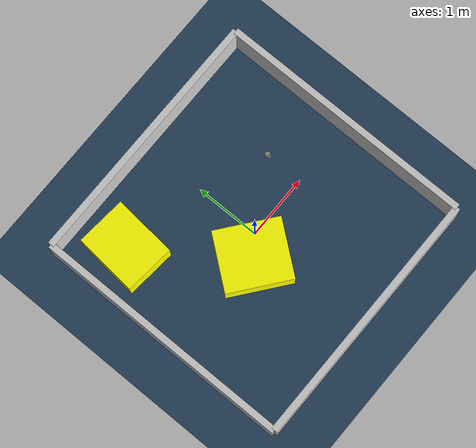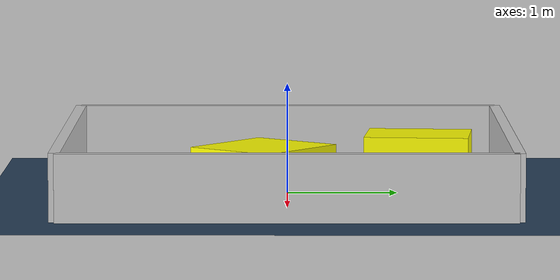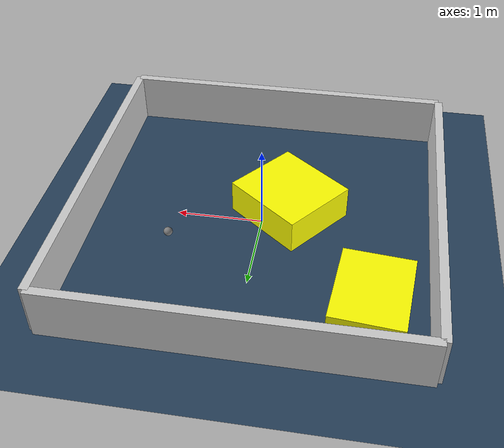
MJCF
<?xml version="1.0" ?>
<mujoco model="generated_environment">
  <option timestep="0.01" integrator="RK4" cone="elliptic"/>
  <default>
    <geom density="1"/>
  </default>
  <asset>
    <texture builtin="gradient" height="3072" rgb1="0.3 0.5 0.7" rgb2="0 0 0" type="skybox" width="512"/>
    <texture builtin="checker" height="300" mark="edge" markrgb="0.8 0.8 0.8" name="groundplane" rgb1="0.2 0.3 0.4" rgb2="0.1 0.2 0.3" type="2d" width="300"/>
    <material name="groundplane" reflectance="0.2" texrepeat="5 5" texture="groundplane" texuniform="true"/>
    <material name="robot" rgba="0.0 1.0 0.0 1"/>
  </asset>
  <worldbody>
    <light dir="0 0 -1" directional="true" pos="0 0 1.5"/>
    <geom condim="4" friction="1.0 0.005 0.001" material="groundplane" name="floor" size="0 0 0.05" type="plane"/>
    <body name="walls">
      <geom name="wall_1" condim="4" pos="-2.0 0.0 0.3" rgba="0.800000011920929 0.800000011920929 0.800000011920929 1.0" size="0.05 2.0 0.3" type="box"/>
      <geom name="wall_2" condim="4" pos="2.0 0.0 0.3" rgba="0.800000011920929 0.800000011920929 0.800000011920929 1.0" size="0.05 2.0 0.3" type="box"/>
      <geom name="wall_3" condim="4" pos="0.0 -2.0 0.3" rgba="0.800000011920929 0.800000011920929 0.800000011920929 1.0" size="2.0 0.05 0.3" type="box"/>
      <geom name="wall_4" condim="4" pos="0.0 2.0 0.3" rgba="0.800000011920929 0.800000011920929 0.800000011920929 1.0" size="2.0 0.05 0.3" type="box"/>
    </body>
    <body name="robot">
      <joint name="joint_x" type="slide" pos="0 0 0" axis="1 0 0"/>
      <joint name="joint_y" type="slide" pos="0 0 0" axis="0 1 0"/>
      <geom name="robot" type="sphere" pos="0.9757422732374179 0.5542355102390721 0.2" size="0.05" mass="5." friction="1.0 0.005 0.0001" condim="4"/>
      <site name="sensor_ball"/>
    </body>
    <body name="obstacle_1_movable">
      <geom name="obstacle_1_movable" condim="4" pos="-1.3317836945740258 1.2413068874282163 0.2" euler="0 0 264.66867961003595" friction="1.0 0.005 0.001" rgba="1 1 0 1" size="0.49077436306086286 0.39094131620378797 0.2" type="box" mass="0.1"/>
      <joint type="free"/>
    </body>
    <body name="obstacle_2_movable">
      <geom name="obstacle_2_movable" condim="4" pos="-0.29632517966862215 -0.2215412174820095 0.2" euler="0 0 321.89508009188177" friction="1.0 0.005 0.001" rgba="1 1 0 1" size="0.5022702828312378 0.4578507831915914 0.2" type="box" mass="0.1"/>
      <joint type="free"/>
    </body>
  </worldbody>
  <actuator>
    <motor name="actuator_x" joint="joint_x" gear="1" ctrlrange="-1 1"/>
    <motor name="actuator_y" joint="joint_y" gear="1" ctrlrange="-1 1"/>
  </actuator>
</mujoco>
